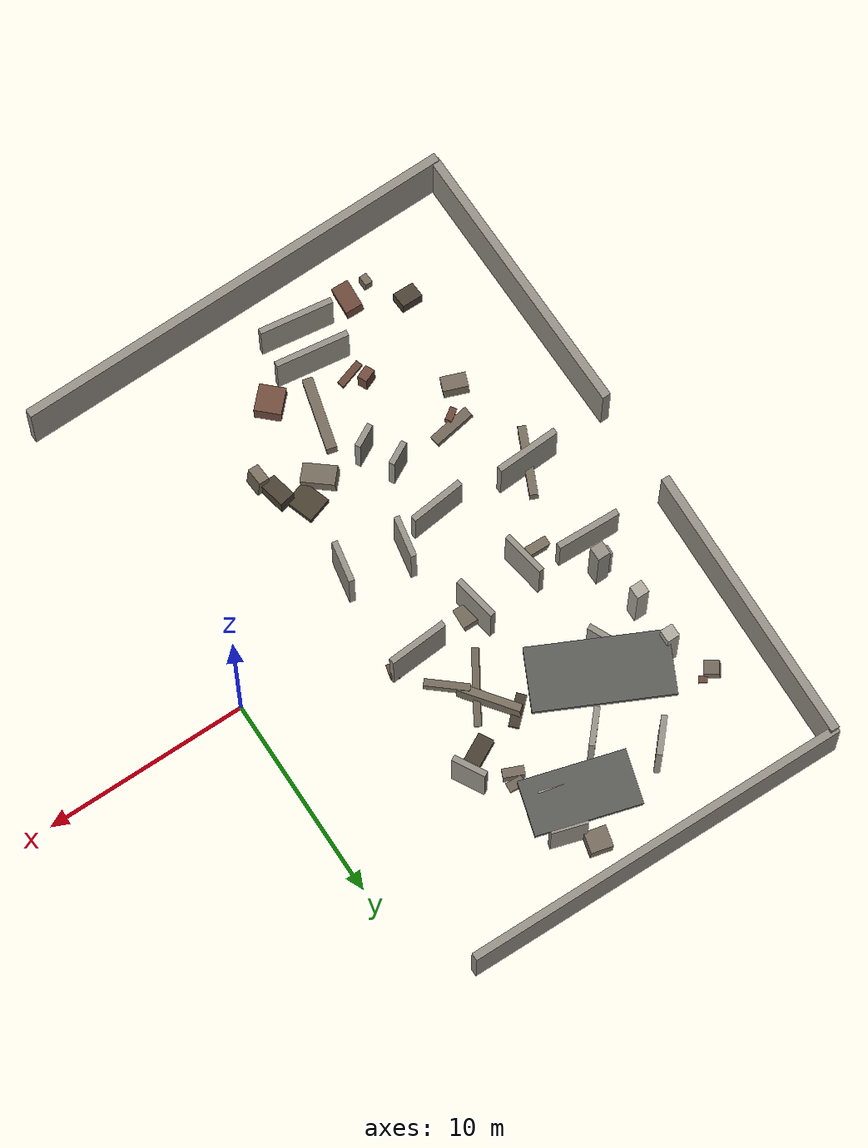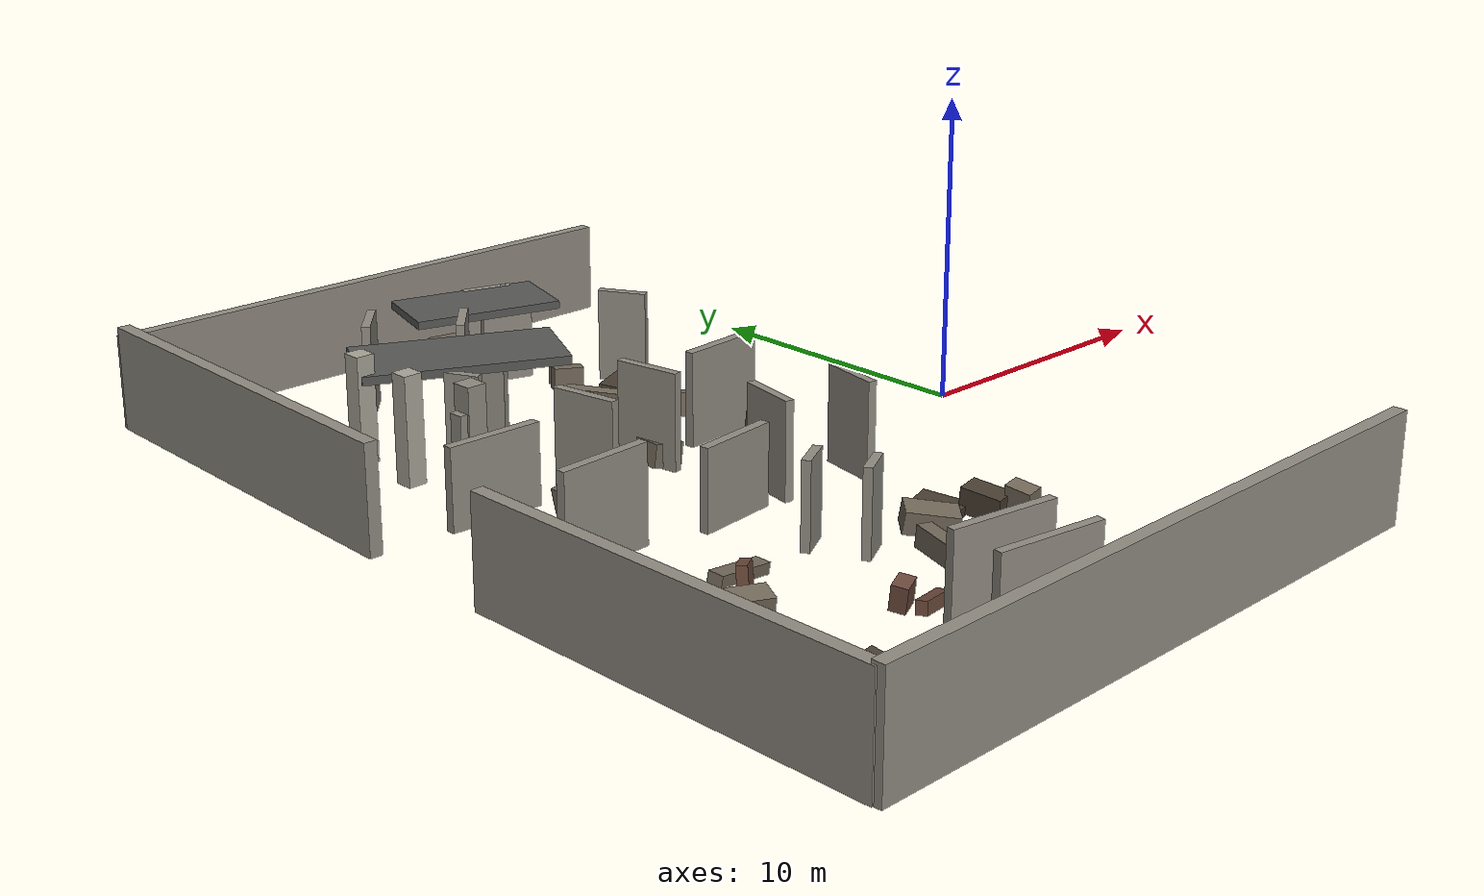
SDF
<sdf version="1.6">
 <model name="ruins_urban_01_medium">
  <static>true</static>
  <link name="001_north_boundary_west">
   <pose>-11.50000 15.85000 1.55000 0.00000 0.00000 -0.01000</pose>
   <visual name="visual">
    <geometry><box><size>19.00000 0.38000 3.10000</size></box></geometry>
    <material>
     <ambient>0.580 0.560 0.520 1</ambient>
     <diffuse>0.580 0.560 0.520 1</diffuse>
     <specular>0.03 0.03 0.03 1</specular>
    </material>
   </visual>
   <collision name="collision">
    <geometry><box><size>19.00000 0.38000 3.10000</size></box></geometry>
    <surface>
     <contact><collide_bitmask>0x01</collide_bitmask></contact>
     <friction><ode><mu>1.0</mu><mu2>1.0</mu2></ode></friction>
    </surface>
   </collision>
  </link>
  <link name="003_south_boundary_west">
   <pose>-10.00000 -15.90000 1.75000 0.00000 0.00000 0.01200</pose>
   <visual name="visual">
    <geometry><box><size>22.00000 0.42000 3.50000</size></box></geometry>
    <material>
     <ambient>0.580 0.560 0.520 1</ambient>
     <diffuse>0.580 0.560 0.520 1</diffuse>
     <specular>0.03 0.03 0.03 1</specular>
    </material>
   </visual>
   <collision name="collision">
    <geometry><box><size>22.00000 0.42000 3.50000</size></box></geometry>
    <surface>
     <contact><collide_bitmask>0x01</collide_bitmask></contact>
     <friction><ode><mu>1.0</mu><mu2>1.0</mu2></ode></friction>
    </surface>
   </collision>
  </link>
  <link name="005_west_boundary_north">
   <pose>-20.95000 9.15000 1.70000 0.00000 0.00000 -0.02000</pose>
   <visual name="visual">
    <geometry><box><size>0.42000 13.70000 3.40000</size></box></geometry>
    <material>
     <ambient>0.580 0.560 0.520 1</ambient>
     <diffuse>0.580 0.560 0.520 1</diffuse>
     <specular>0.03 0.03 0.03 1</specular>
    </material>
   </visual>
   <collision name="collision">
    <geometry><box><size>0.42000 13.70000 3.40000</size></box></geometry>
    <surface>
     <contact><collide_bitmask>0x01</collide_bitmask></contact>
     <friction><ode><mu>1.0</mu><mu2>1.0</mu2></ode></friction>
    </surface>
   </collision>
  </link>
  <link name="006_west_boundary_south">
   <pose>-20.95000 -9.15000 1.70000 0.00000 0.00000 0.01500</pose>
   <visual name="visual">
    <geometry><box><size>0.42000 13.70000 3.40000</size></box></geometry>
    <material>
     <ambient>0.580 0.560 0.520 1</ambient>
     <diffuse>0.580 0.560 0.520 1</diffuse>
     <specular>0.03 0.03 0.03 1</specular>
    </material>
   </visual>
   <collision name="collision">
    <geometry><box><size>0.42000 13.70000 3.40000</size></box></geometry>
    <surface>
     <contact><collide_bitmask>0x01</collide_bitmask></contact>
     <friction><ode><mu>1.0</mu><mu2>1.0</mu2></ode></friction>
    </surface>
   </collision>
  </link>
  <link name="008_ground_corridor_g2_n1_left">
   <pose>-13.96680 1.73807 1.57500 0.00000 0.00000 1.74751</pose>
   <visual name="visual">
    <geometry><box><size>2.18859 0.28000 3.15000</size></box></geometry>
    <material>
     <ambient>0.580 0.560 0.520 1</ambient>
     <diffuse>0.580 0.560 0.520 1</diffuse>
     <specular>0.03 0.03 0.03 1</specular>
    </material>
   </visual>
   <collision name="collision">
    <geometry><box><size>2.18859 0.28000 3.15000</size></box></geometry>
    <surface>
     <contact><collide_bitmask>0x01</collide_bitmask></contact>
     <friction><ode><mu>1.0</mu><mu2>1.0</mu2></ode></friction>
    </surface>
   </collision>
  </link>
  <link name="009_ground_corridor_g2_n1_right">
   <pose>-11.03320 2.26193 1.57500 0.00000 0.00000 1.74751</pose>
   <visual name="visual">
    <geometry><box><size>2.18859 0.28000 3.15000</size></box></geometry>
    <material>
     <ambient>0.580 0.560 0.520 1</ambient>
     <diffuse>0.580 0.560 0.520 1</diffuse>
     <specular>0.03 0.03 0.03 1</specular>
    </material>
   </visual>
   <collision name="collision">
    <geometry><box><size>2.18859 0.28000 3.15000</size></box></geometry>
    <surface>
     <contact><collide_bitmask>0x01</collide_bitmask></contact>
     <friction><ode><mu>1.0</mu><mu2>1.0</mu2></ode></friction>
    </surface>
   </collision>
  </link>
  <link name="010_ground_corridor_n1_n2_left">
   <pose>-14.78097 6.52811 1.37500 0.00000 0.00000 2.01522</pose>
   <visual name="visual">
    <geometry><box><size>1.15188 0.28000 2.75000</size></box></geometry>
    <material>
     <ambient>0.580 0.560 0.520 1</ambient>
     <diffuse>0.580 0.560 0.520 1</diffuse>
     <specular>0.03 0.03 0.03 1</specular>
    </material>
   </visual>
   <collision name="collision">
    <geometry><box><size>1.15188 0.28000 2.75000</size></box></geometry>
    <surface>
     <contact><collide_bitmask>0x01</collide_bitmask></contact>
     <friction><ode><mu>1.0</mu><mu2>1.0</mu2></ode></friction>
    </surface>
   </collision>
  </link>
  <link name="011_ground_corridor_n1_n2_right">
   <pose>-13.21903 7.27189 1.37500 0.00000 0.00000 2.01522</pose>
   <visual name="visual">
    <geometry><box><size>1.15188 0.28000 2.75000</size></box></geometry>
    <material>
     <ambient>0.580 0.560 0.520 1</ambient>
     <diffuse>0.580 0.560 0.520 1</diffuse>
     <specular>0.03 0.03 0.03 1</specular>
    </material>
   </visual>
   <collision name="collision">
    <geometry><box><size>1.15188 0.28000 2.75000</size></box></geometry>
    <surface>
     <contact><collide_bitmask>0x01</collide_bitmask></contact>
     <friction><ode><mu>1.0</mu><mu2>1.0</mu2></ode></friction>
    </surface>
   </collision>
  </link>
  <link name="012_ground_corridor_n2_n3_left">
   <pose>-14.37134 11.98117 1.57500 0.00000 0.00000 0.85197</pose>
   <visual name="visual">
    <geometry><box><size>1.81507 0.28000 3.15000</size></box></geometry>
    <material>
     <ambient>0.580 0.560 0.520 1</ambient>
     <diffuse>0.580 0.560 0.520 1</diffuse>
     <specular>0.03 0.03 0.03 1</specular>
    </material>
   </visual>
   <collision name="collision">
    <geometry><box><size>1.81507 0.28000 3.15000</size></box></geometry>
    <surface>
     <contact><collide_bitmask>0x01</collide_bitmask></contact>
     <friction><ode><mu>1.0</mu><mu2>1.0</mu2></ode></friction>
    </surface>
   </collision>
  </link>
  <link name="013_ground_corridor_n2_n3_right">
   <pose>-12.12866 10.01883 1.57500 0.00000 0.00000 0.85197</pose>
   <visual name="visual">
    <geometry><box><size>1.81507 0.28000 3.15000</size></box></geometry>
    <material>
     <ambient>0.580 0.560 0.520 1</ambient>
     <diffuse>0.580 0.560 0.520 1</diffuse>
     <specular>0.03 0.03 0.03 1</specular>
    </material>
   </visual>
   <collision name="collision">
    <geometry><box><size>1.81507 0.28000 3.15000</size></box></geometry>
    <surface>
     <contact><collide_bitmask>0x01</collide_bitmask></contact>
     <friction><ode><mu>1.0</mu><mu2>1.0</mu2></ode></friction>
    </surface>
   </collision>
  </link>
  <link name="014_ground_corridor_n3_n4_left">
   <pose>-8.75144 13.07852 1.37500 0.00000 0.00000 -0.29146</pose>
   <visual name="visual">
    <geometry><box><size>1.72015 0.28000 2.75000</size></box></geometry>
    <material>
     <ambient>0.580 0.560 0.520 1</ambient>
     <diffuse>0.580 0.560 0.520 1</diffuse>
     <specular>0.03 0.03 0.03 1</specular>
    </material>
   </visual>
   <collision name="collision">
    <geometry><box><size>1.72015 0.28000 2.75000</size></box></geometry>
    <surface>
     <contact><collide_bitmask>0x01</collide_bitmask></contact>
     <friction><ode><mu>1.0</mu><mu2>1.0</mu2></ode></friction>
    </surface>
   </collision>
  </link>
  <link name="015_ground_corridor_n3_n4_right">
   <pose>-9.24856 11.42148 1.37500 0.00000 0.00000 -0.29146</pose>
   <visual name="visual">
    <geometry><box><size>1.72015 0.28000 2.75000</size></box></geometry>
    <material>
     <ambient>0.580 0.560 0.520 1</ambient>
     <diffuse>0.580 0.560 0.520 1</diffuse>
     <specular>0.03 0.03 0.03 1</specular>
    </material>
   </visual>
   <collision name="collision">
    <geometry><box><size>1.72015 0.28000 2.75000</size></box></geometry>
    <surface>
     <contact><collide_bitmask>0x01</collide_bitmask></contact>
     <friction><ode><mu>1.0</mu><mu2>1.0</mu2></ode></friction>
    </surface>
   </collision>
  </link>
  <link name="017_ground_corridor_n4_n5_right">
   <pose>-6.55249 8.52639 1.57500 0.00000 0.00000 -1.06370</pose>
   <visual name="visual">
    <geometry><box><size>1.64782 0.28000 3.15000</size></box></geometry>
    <material>
     <ambient>0.580 0.560 0.520 1</ambient>
     <diffuse>0.580 0.560 0.520 1</diffuse>
     <specular>0.03 0.03 0.03 1</specular>
    </material>
   </visual>
   <collision name="collision">
    <geometry><box><size>1.64782 0.28000 3.15000</size></box></geometry>
    <surface>
     <contact><collide_bitmask>0x01</collide_bitmask></contact>
     <friction><ode><mu>1.0</mu><mu2>1.0</mu2></ode></friction>
    </surface>
   </collision>
  </link>
  <link name="018_ground_corridor_g3_s1_left">
   <pose>-7.03491 -2.37131 1.57500 0.00000 0.00000 -1.75391</pose>
   <visual name="visual">
    <geometry><box><size>1.99181 0.28000 3.15000</size></box></geometry>
    <material>
     <ambient>0.580 0.560 0.520 1</ambient>
     <diffuse>0.580 0.560 0.520 1</diffuse>
     <specular>0.03 0.03 0.03 1</specular>
    </material>
   </visual>
   <collision name="collision">
    <geometry><box><size>1.99181 0.28000 3.15000</size></box></geometry>
    <surface>
     <contact><collide_bitmask>0x01</collide_bitmask></contact>
     <friction><ode><mu>1.0</mu><mu2>1.0</mu2></ode></friction>
    </surface>
   </collision>
  </link>
  <link name="019_ground_corridor_g3_s1_right">
   <pose>-9.96509 -1.82869 1.57500 0.00000 0.00000 -1.75391</pose>
   <visual name="visual">
    <geometry><box><size>1.99181 0.28000 3.15000</size></box></geometry>
    <material>
     <ambient>0.580 0.560 0.520 1</ambient>
     <diffuse>0.580 0.560 0.520 1</diffuse>
     <specular>0.03 0.03 0.03 1</specular>
    </material>
   </visual>
   <collision name="collision">
    <geometry><box><size>1.99181 0.28000 3.15000</size></box></geometry>
    <surface>
     <contact><collide_bitmask>0x01</collide_bitmask></contact>
     <friction><ode><mu>1.0</mu><mu2>1.0</mu2></ode></friction>
    </surface>
   </collision>
  </link>
  <link name="020_ground_corridor_s1_s2_left">
   <pose>-11.08900 -6.91112 1.37500 0.00000 0.00000 -2.64646</pose>
   <visual name="visual">
    <geometry><box><size>1.18243 0.28000 2.75000</size></box></geometry>
    <material>
     <ambient>0.580 0.560 0.520 1</ambient>
     <diffuse>0.580 0.560 0.520 1</diffuse>
     <specular>0.03 0.03 0.03 1</specular>
    </material>
   </visual>
   <collision name="collision">
    <geometry><box><size>1.18243 0.28000 2.75000</size></box></geometry>
    <surface>
     <contact><collide_bitmask>0x01</collide_bitmask></contact>
     <friction><ode><mu>1.0</mu><mu2>1.0</mu2></ode></friction>
    </surface>
   </collision>
  </link>
  <link name="021_ground_corridor_s1_s2_right">
   <pose>-11.91100 -5.38888 1.37500 0.00000 0.00000 -2.64646</pose>
   <visual name="visual">
    <geometry><box><size>1.18243 0.28000 2.75000</size></box></geometry>
    <material>
     <ambient>0.580 0.560 0.520 1</ambient>
     <diffuse>0.580 0.560 0.520 1</diffuse>
     <specular>0.03 0.03 0.03 1</specular>
    </material>
   </visual>
   <collision name="collision">
    <geometry><box><size>1.18243 0.28000 2.75000</size></box></geometry>
    <surface>
     <contact><collide_bitmask>0x01</collide_bitmask></contact>
     <friction><ode><mu>1.0</mu><mu2>1.0</mu2></ode></friction>
    </surface>
   </collision>
  </link>
  <link name="022_ground_corridor_s3_s4_left">
   <pose>-11.37767 -11.64369 1.37500 0.00000 0.00000 -0.14190</pose>
   <visual name="visual">
    <geometry><box><size>3.57107 0.28000 2.75000</size></box></geometry>
    <material>
     <ambient>0.580 0.560 0.520 1</ambient>
     <diffuse>0.580 0.560 0.520 1</diffuse>
     <specular>0.03 0.03 0.03 1</specular>
    </material>
   </visual>
   <collision name="collision">
    <geometry><box><size>3.57107 0.28000 2.75000</size></box></geometry>
    <surface>
     <contact><collide_bitmask>0x01</collide_bitmask></contact>
     <friction><ode><mu>1.0</mu><mu2>1.0</mu2></ode></friction>
    </surface>
   </collision>
  </link>
  <link name="023_ground_corridor_s3_s4_right">
   <pose>-11.62233 -13.35631 1.37500 0.00000 0.00000 -0.14190</pose>
   <visual name="visual">
    <geometry><box><size>3.57107 0.28000 2.75000</size></box></geometry>
    <material>
     <ambient>0.580 0.560 0.520 1</ambient>
     <diffuse>0.580 0.560 0.520 1</diffuse>
     <specular>0.03 0.03 0.03 1</specular>
    </material>
   </visual>
   <collision name="collision">
    <geometry><box><size>3.57107 0.28000 2.75000</size></box></geometry>
    <surface>
     <contact><collide_bitmask>0x01</collide_bitmask></contact>
     <friction><ode><mu>1.0</mu><mu2>1.0</mu2></ode></friction>
    </surface>
   </collision>
  </link>
  <link name="038_spine_broken_panel_00">
   <pose>-17.05000 2.20000 1.30000 0.00000 0.00000 -0.03225</pose>
   <visual name="visual">
    <geometry><box><size>3.10161 0.30000 2.60000</size></box></geometry>
    <material>
     <ambient>0.580 0.560 0.520 1</ambient>
     <diffuse>0.580 0.560 0.520 1</diffuse>
     <specular>0.03 0.03 0.03 1</specular>
    </material>
   </visual>
   <collision name="collision">
    <geometry><box><size>3.10161 0.30000 2.60000</size></box></geometry>
    <surface>
     <contact><collide_bitmask>0x01</collide_bitmask></contact>
     <friction><ode><mu>1.0</mu><mu2>1.0</mu2></ode></friction>
    </surface>
   </collision>
  </link>
  <link name="039_spine_broken_panel_02">
   <pose>-7.75000 2.55000 1.55000 0.00000 0.00000 0.06886</pose>
   <visual name="visual">
    <geometry><box><size>2.90689 0.30000 3.10000</size></box></geometry>
    <material>
     <ambient>0.580 0.560 0.520 1</ambient>
     <diffuse>0.580 0.560 0.520 1</diffuse>
     <specular>0.03 0.03 0.03 1</specular>
    </material>
   </visual>
   <collision name="collision">
    <geometry><box><size>2.90689 0.30000 3.10000</size></box></geometry>
    <surface>
     <contact><collide_bitmask>0x01</collide_bitmask></contact>
     <friction><ode><mu>1.0</mu><mu2>1.0</mu2></ode></friction>
    </surface>
   </collision>
  </link>
  <link name="044_spine_broken_panel_08">
   <pose>-16.75000 -2.22500 1.55000 0.00000 0.00000 0.04835</pose>
   <visual name="visual">
    <geometry><box><size>3.10363 0.30000 3.10000</size></box></geometry>
    <material>
     <ambient>0.580 0.560 0.520 1</ambient>
     <diffuse>0.580 0.560 0.520 1</diffuse>
     <specular>0.03 0.03 0.03 1</specular>
    </material>
   </visual>
   <collision name="collision">
    <geometry><box><size>3.10363 0.30000 3.10000</size></box></geometry>
    <surface>
     <contact><collide_bitmask>0x01</collide_bitmask></contact>
     <friction><ode><mu>1.0</mu><mu2>1.0</mu2></ode></friction>
    </surface>
   </collision>
  </link>
  <link name="045_spine_broken_panel_09">
   <pose>-12.15000 -2.60000 1.30000 0.00000 0.00000 0.11066</pose>
   <visual name="visual">
    <geometry><box><size>2.71662 0.30000 2.60000</size></box></geometry>
    <material>
     <ambient>0.580 0.560 0.520 1</ambient>
     <diffuse>0.580 0.560 0.520 1</diffuse>
     <specular>0.03 0.03 0.03 1</specular>
    </material>
   </visual>
   <collision name="collision">
    <geometry><box><size>2.71662 0.30000 2.60000</size></box></geometry>
    <surface>
     <contact><collide_bitmask>0x01</collide_bitmask></contact>
     <friction><ode><mu>1.0</mu><mu2>1.0</mu2></ode></friction>
    </surface>
   </collision>
  </link>
  <link name="050_utility_ceiling_01">
   <pose>-13.80000 8.00000 2.72000 0.00000 0.00000 -0.45000</pose>
   <visual name="visual">
    <geometry><box><size>6.50000 3.00000 0.28000</size></box></geometry>
    <material>
     <ambient>0.350 0.350 0.340 1</ambient>
     <diffuse>0.350 0.350 0.340 1</diffuse>
     <specular>0.03 0.03 0.03 1</specular>
    </material>
   </visual>
   <collision name="collision">
    <geometry><box><size>6.50000 3.00000 0.28000</size></box></geometry>
    <surface>
     <contact><collide_bitmask>0x01</collide_bitmask></contact>
     <friction><ode><mu>1.0</mu><mu2>1.0</mu2></ode></friction>
    </surface>
   </collision>
  </link>
  <link name="051_utility_ceiling_02">
   <pose>-10.00000 12.10000 2.62000 0.00000 0.00000 -0.28000</pose>
   <visual name="visual">
    <geometry><box><size>5.00000 2.60000 0.26000</size></box></geometry>
    <material>
     <ambient>0.350 0.350 0.340 1</ambient>
     <diffuse>0.350 0.350 0.340 1</diffuse>
     <specular>0.03 0.03 0.03 1</specular>
    </material>
   </visual>
   <collision name="collision">
    <geometry><box><size>5.00000 2.60000 0.26000</size></box></geometry>
    <surface>
     <contact><collide_bitmask>0x01</collide_bitmask></contact>
     <friction><ode><mu>1.0</mu><mu2>1.0</mu2></ode></friction>
    </surface>
   </collision>
  </link>
  <link name="052_fixed_column_00">
   <pose>-17.20000 6.00000 1.75000 0.00000 0.00000 0.00000</pose>
   <visual name="visual">
    <geometry><box><size>0.62000 0.62000 3.50000</size></box></geometry>
    <material>
     <ambient>0.680 0.660 0.610 1</ambient>
     <diffuse>0.680 0.660 0.610 1</diffuse>
     <specular>0.03 0.03 0.03 1</specular>
    </material>
   </visual>
   <collision name="collision">
    <geometry><box><size>0.62000 0.62000 3.50000</size></box></geometry>
    <surface>
     <contact><collide_bitmask>0x01</collide_bitmask></contact>
     <friction><ode><mu>1.0</mu><mu2>1.0</mu2></ode></friction>
    </surface>
   </collision>
  </link>
  <link name="053_fixed_column_01">
   <pose>-17.20000 8.40000 1.75000 0.00000 0.00000 0.00000</pose>
   <visual name="visual">
    <geometry><box><size>0.62000 0.62000 3.50000</size></box></geometry>
    <material>
     <ambient>0.680 0.660 0.610 1</ambient>
     <diffuse>0.680 0.660 0.610 1</diffuse>
     <specular>0.03 0.03 0.03 1</specular>
    </material>
   </visual>
   <collision name="collision">
    <geometry><box><size>0.62000 0.62000 3.50000</size></box></geometry>
    <surface>
     <contact><collide_bitmask>0x01</collide_bitmask></contact>
     <friction><ode><mu>1.0</mu><mu2>1.0</mu2></ode></friction>
    </surface>
   </collision>
  </link>
  <link name="093_medium_random_column_02">
   <pose>-16.93869 3.57772 1.42360 0.00000 0.00000 0.00000</pose>
   <visual name="visual">
    <geometry><box><size>0.70482 0.46498 2.84720</size></box></geometry>
    <material>
     <ambient>0.580 0.560 0.520 1</ambient>
     <diffuse>0.580 0.560 0.520 1</diffuse>
     <specular>0.03 0.03 0.03 1</specular>
    </material>
   </visual>
   <collision name="collision">
    <geometry><box><size>0.70482 0.46498 2.84720</size></box></geometry>
    <surface>
     <contact><collide_bitmask>0x01</collide_bitmask></contact>
     <friction><ode><mu>1.0</mu><mu2>1.0</mu2></ode></friction>
    </surface>
   </collision>
  </link>
  <link name="100_medium_random_column_09">
   <pose>-16.72560 3.60039 1.83524 0.00000 0.00000 0.00000</pose>
   <visual name="visual">
    <geometry><box><size>0.63542 0.66842 3.67047</size></box></geometry>
    <material>
     <ambient>0.580 0.560 0.520 1</ambient>
     <diffuse>0.580 0.560 0.520 1</diffuse>
     <specular>0.03 0.03 0.03 1</specular>
    </material>
   </visual>
   <collision name="collision">
    <geometry><box><size>0.63542 0.66842 3.67047</size></box></geometry>
    <surface>
     <contact><collide_bitmask>0x01</collide_bitmask></contact>
     <friction><ode><mu>1.0</mu><mu2>1.0</mu2></ode></friction>
    </surface>
   </collision>
  </link>
  <link name="101_medium_rubble_000">
   <pose>-6.48572 2.47917 0.54035 -0.04165 -0.14884 2.86690</pose>
   <visual name="visual">
    <geometry><box><size>0.36681 0.47839 1.08071</size></box></geometry>
    <material>
     <ambient>0.430 0.290 0.230 1</ambient>
     <diffuse>0.430 0.290 0.230 1</diffuse>
     <specular>0.03 0.03 0.03 1</specular>
    </material>
   </visual>
   <collision name="collision">
    <geometry><box><size>0.36681 0.47839 1.08071</size></box></geometry>
    <surface>
     <contact><collide_bitmask>0x01</collide_bitmask></contact>
     <friction><ode><mu>1.0</mu><mu2>1.0</mu2></ode></friction>
    </surface>
   </collision>
  </link>
  <link name="102_medium_rubble_001">
   <pose>-8.77116 -7.03309 0.35260 -0.06836 -0.14068 2.41416</pose>
   <visual name="visual">
    <geometry><box><size>1.61996 0.95524 0.70519</size></box></geometry>
    <material>
     <ambient>0.460 0.420 0.360 1</ambient>
     <diffuse>0.460 0.420 0.360 1</diffuse>
     <specular>0.03 0.03 0.03 1</specular>
    </material>
   </visual>
   <collision name="collision">
    <geometry><box><size>1.61996 0.95524 0.70519</size></box></geometry>
    <surface>
     <contact><collide_bitmask>0x01</collide_bitmask></contact>
     <friction><ode><mu>1.0</mu><mu2>1.0</mu2></ode></friction>
    </surface>
   </collision>
  </link>
  <link name="104_medium_rubble_003">
   <pose>-9.77870 13.92279 0.47048 -0.01500 0.04230 1.33665</pose>
   <visual name="visual">
    <geometry><box><size>1.01523 1.05675 0.94095</size></box></geometry>
    <material>
     <ambient>0.460 0.420 0.360 1</ambient>
     <diffuse>0.460 0.420 0.360 1</diffuse>
     <specular>0.03 0.03 0.03 1</specular>
    </material>
   </visual>
   <collision name="collision">
    <geometry><box><size>1.01523 1.05675 0.94095</size></box></geometry>
    <surface>
     <contact><collide_bitmask>0x01</collide_bitmask></contact>
     <friction><ode><mu>1.0</mu><mu2>1.0</mu2></ode></friction>
    </surface>
   </collision>
  </link>
  <link name="105_medium_rubble_004">
   <pose>-15.29528 -6.21242 0.40188 -0.09750 0.11711 0.59042</pose>
   <visual name="visual">
    <geometry><box><size>0.63008 0.33308 0.80376</size></box></geometry>
    <material>
     <ambient>0.430 0.290 0.230 1</ambient>
     <diffuse>0.430 0.290 0.230 1</diffuse>
     <specular>0.03 0.03 0.03 1</specular>
    </material>
   </visual>
   <collision name="collision">
    <geometry><box><size>0.63008 0.33308 0.80376</size></box></geometry>
    <surface>
     <contact><collide_bitmask>0x01</collide_bitmask></contact>
     <friction><ode><mu>1.0</mu><mu2>1.0</mu2></ode></friction>
    </surface>
   </collision>
  </link>
  <link name="109_medium_rubble_008">
   <pose>-17.88873 10.27993 0.17756 0.08843 -0.05150 2.56237</pose>
   <visual name="visual">
    <geometry><box><size>0.43265 0.30144 0.35512</size></box></geometry>
    <material>
     <ambient>0.430 0.290 0.230 1</ambient>
     <diffuse>0.430 0.290 0.230 1</diffuse>
     <specular>0.03 0.03 0.03 1</specular>
    </material>
   </visual>
   <collision name="collision">
    <geometry><box><size>0.43265 0.30144 0.35512</size></box></geometry>
    <surface>
     <contact><collide_bitmask>0x01</collide_bitmask></contact>
     <friction><ode><mu>1.0</mu><mu2>1.0</mu2></ode></friction>
    </surface>
   </collision>
  </link>
  <link name="110_medium_rubble_009">
   <pose>-8.23202 9.73610 0.31206 0.14910 0.13556 1.50559</pose>
   <visual name="visual">
    <geometry><box><size>0.45033 0.79728 0.62412</size></box></geometry>
    <material>
     <ambient>0.460 0.420 0.360 1</ambient>
     <diffuse>0.460 0.420 0.360 1</diffuse>
     <specular>0.03 0.03 0.03 1</specular>
    </material>
   </visual>
   <collision name="collision">
    <geometry><box><size>0.45033 0.79728 0.62412</size></box></geometry>
    <surface>
     <contact><collide_bitmask>0x01</collide_bitmask></contact>
     <friction><ode><mu>1.0</mu><mu2>1.0</mu2></ode></friction>
    </surface>
   </collision>
  </link>
  <link name="115_medium_rubble_014">
   <pose>-6.75703 -7.39031 0.40239 0.10069 -0.04487 0.18188</pose>
   <visual name="visual">
    <geometry><box><size>0.79155 1.30393 0.80479</size></box></geometry>
    <material>
     <ambient>0.290 0.250 0.200 1</ambient>
     <diffuse>0.290 0.250 0.200 1</diffuse>
     <specular>0.03 0.03 0.03 1</specular>
    </material>
   </visual>
   <collision name="collision">
    <geometry><box><size>0.79155 1.30393 0.80479</size></box></geometry>
    <surface>
     <contact><collide_bitmask>0x01</collide_bitmask></contact>
     <friction><ode><mu>1.0</mu><mu2>1.0</mu2></ode></friction>
    </surface>
   </collision>
  </link>
  <link name="117_medium_rubble_016">
   <pose>-14.43709 -13.42804 0.46290 0.00624 -0.11015 3.08492</pose>
   <visual name="visual">
    <geometry><box><size>0.85052 1.33859 0.92580</size></box></geometry>
    <material>
     <ambient>0.430 0.290 0.230 1</ambient>
     <diffuse>0.430 0.290 0.230 1</diffuse>
     <specular>0.03 0.03 0.03 1</specular>
    </material>
   </visual>
   <collision name="collision">
    <geometry><box><size>0.85052 1.33859 0.92580</size></box></geometry>
    <surface>
     <contact><collide_bitmask>0x01</collide_bitmask></contact>
     <friction><ode><mu>1.0</mu><mu2>1.0</mu2></ode></friction>
    </surface>
   </collision>
  </link>
  <link name="118_medium_rubble_017">
   <pose>-10.79476 2.09504 0.37981 0.15900 0.01882 1.52706</pose>
   <visual name="visual">
    <geometry><box><size>0.94957 1.06453 0.75962</size></box></geometry>
    <material>
     <ambient>0.460 0.420 0.360 1</ambient>
     <diffuse>0.460 0.420 0.360 1</diffuse>
     <specular>0.03 0.03 0.03 1</specular>
    </material>
   </visual>
   <collision name="collision">
    <geometry><box><size>0.94957 1.06453 0.75962</size></box></geometry>
    <surface>
     <contact><collide_bitmask>0x01</collide_bitmask></contact>
     <friction><ode><mu>1.0</mu><mu2>1.0</mu2></ode></friction>
    </surface>
   </collision>
  </link>
  <link name="122_medium_rubble_021">
   <pose>-10.17587 6.95912 0.21773 -0.04749 0.15116 0.74437</pose>
   <visual name="visual">
    <geometry><box><size>1.52736 0.50643 0.43546</size></box></geometry>
    <material>
     <ambient>0.290 0.250 0.200 1</ambient>
     <diffuse>0.290 0.250 0.200 1</diffuse>
     <specular>0.03 0.03 0.03 1</specular>
    </material>
   </visual>
   <collision name="collision">
    <geometry><box><size>1.52736 0.50643 0.43546</size></box></geometry>
    <surface>
     <contact><collide_bitmask>0x01</collide_bitmask></contact>
     <friction><ode><mu>1.0</mu><mu2>1.0</mu2></ode></friction>
    </surface>
   </collision>
  </link>
  <link name="124_medium_rubble_023">
   <pose>-6.32077 -8.38105 0.55220 0.08922 -0.17511 0.04031</pose>
   <visual name="visual">
    <geometry><box><size>0.53231 0.87293 1.10441</size></box></geometry>
    <material>
     <ambient>0.460 0.420 0.360 1</ambient>
     <diffuse>0.460 0.420 0.360 1</diffuse>
     <specular>0.03 0.03 0.03 1</specular>
    </material>
   </visual>
   <collision name="collision">
    <geometry><box><size>0.53231 0.87293 1.10441</size></box></geometry>
    <surface>
     <contact><collide_bitmask>0x01</collide_bitmask></contact>
     <friction><ode><mu>1.0</mu><mu2>1.0</mu2></ode></friction>
    </surface>
   </collision>
  </link>
  <link name="130_medium_rubble_029">
   <pose>-18.44382 10.15596 0.43780 0.15297 0.07016 0.96647</pose>
   <visual name="visual">
    <geometry><box><size>0.66206 0.70038 0.87561</size></box></geometry>
    <material>
     <ambient>0.460 0.420 0.360 1</ambient>
     <diffuse>0.460 0.420 0.360 1</diffuse>
     <specular>0.03 0.03 0.03 1</specular>
    </material>
   </visual>
   <collision name="collision">
    <geometry><box><size>0.66206 0.70038 0.87561</size></box></geometry>
    <surface>
     <contact><collide_bitmask>0x01</collide_bitmask></contact>
     <friction><ode><mu>1.0</mu><mu2>1.0</mu2></ode></friction>
    </surface>
   </collision>
  </link>
  <link name="132_medium_rubble_031">
   <pose>-14.99580 1.15758 0.42017 -0.07949 -0.15426 0.01307</pose>
   <visual name="visual">
    <geometry><box><size>1.12996 0.45655 0.84034</size></box></geometry>
    <material>
     <ambient>0.460 0.420 0.360 1</ambient>
     <diffuse>0.460 0.420 0.360 1</diffuse>
     <specular>0.03 0.03 0.03 1</specular>
    </material>
   </visual>
   <collision name="collision">
    <geometry><box><size>1.12996 0.45655 0.84034</size></box></geometry>
    <surface>
     <contact><collide_bitmask>0x01</collide_bitmask></contact>
     <friction><ode><mu>1.0</mu><mu2>1.0</mu2></ode></friction>
    </surface>
   </collision>
  </link>
  <link name="133_medium_rubble_032">
   <pose>-8.81939 -11.22525 0.36619 0.02188 -0.11798 0.81221</pose>
   <visual name="visual">
    <geometry><box><size>1.36091 1.26744 0.73238</size></box></geometry>
    <material>
     <ambient>0.430 0.290 0.230 1</ambient>
     <diffuse>0.430 0.290 0.230 1</diffuse>
     <specular>0.03 0.03 0.03 1</specular>
    </material>
   </visual>
   <collision name="collision">
    <geometry><box><size>1.36091 1.26744 0.73238</size></box></geometry>
    <surface>
     <contact><collide_bitmask>0x01</collide_bitmask></contact>
     <friction><ode><mu>1.0</mu><mu2>1.0</mu2></ode></friction>
    </surface>
   </collision>
  </link>
  <link name="135_medium_rubble_034">
   <pose>-8.40034 9.28842 0.37290 0.04426 0.00890 1.16009</pose>
   <visual name="visual">
    <geometry><box><size>0.42986 1.01386 0.74580</size></box></geometry>
    <material>
     <ambient>0.460 0.420 0.360 1</ambient>
     <diffuse>0.460 0.420 0.360 1</diffuse>
     <specular>0.03 0.03 0.03 1</specular>
    </material>
   </visual>
   <collision name="collision">
    <geometry><box><size>0.42986 1.01386 0.74580</size></box></geometry>
    <surface>
     <contact><collide_bitmask>0x01</collide_bitmask></contact>
     <friction><ode><mu>1.0</mu><mu2>1.0</mu2></ode></friction>
    </surface>
   </collision>
  </link>
  <link name="136_medium_rubble_035">
   <pose>-16.79746 -12.04286 0.29935 0.12328 -0.09924 0.02156</pose>
   <visual name="visual">
    <geometry><box><size>1.05449 0.79006 0.59870</size></box></geometry>
    <material>
     <ambient>0.290 0.250 0.200 1</ambient>
     <diffuse>0.290 0.250 0.200 1</diffuse>
     <specular>0.03 0.03 0.03 1</specular>
    </material>
   </visual>
   <collision name="collision">
    <geometry><box><size>1.05449 0.79006 0.59870</size></box></geometry>
    <surface>
     <contact><collide_bitmask>0x01</collide_bitmask></contact>
     <friction><ode><mu>1.0</mu><mu2>1.0</mu2></ode></friction>
    </surface>
   </collision>
  </link>
  <link name="137_medium_rubble_036">
   <pose>-13.10219 -9.82628 0.39870 -0.11306 -0.11869 1.98965</pose>
   <visual name="visual">
    <geometry><box><size>0.48661 0.68686 0.79740</size></box></geometry>
    <material>
     <ambient>0.430 0.290 0.230 1</ambient>
     <diffuse>0.430 0.290 0.230 1</diffuse>
     <specular>0.03 0.03 0.03 1</specular>
    </material>
   </visual>
   <collision name="collision">
    <geometry><box><size>0.48661 0.68686 0.79740</size></box></geometry>
    <surface>
     <contact><collide_bitmask>0x01</collide_bitmask></contact>
     <friction><ode><mu>1.0</mu><mu2>1.0</mu2></ode></friction>
    </surface>
   </collision>
  </link>
  <link name="143_medium_rubble_042">
   <pose>-7.67990 -6.38503 0.16587 -0.01576 -0.07577 1.87779</pose>
   <visual name="visual">
    <geometry><box><size>1.47299 1.26985 0.33174</size></box></geometry>
    <material>
     <ambient>0.290 0.250 0.200 1</ambient>
     <diffuse>0.290 0.250 0.200 1</diffuse>
     <specular>0.03 0.03 0.03 1</specular>
    </material>
   </visual>
   <collision name="collision">
    <geometry><box><size>1.47299 1.26985 0.33174</size></box></geometry>
    <surface>
     <contact><collide_bitmask>0x01</collide_bitmask></contact>
     <friction><ode><mu>1.0</mu><mu2>1.0</mu2></ode></friction>
    </surface>
   </collision>
  </link>
  <link name="148_medium_rubble_047">
   <pose>-16.26555 -7.36130 0.32339 -0.15875 -0.04509 2.77346</pose>
   <visual name="visual">
    <geometry><box><size>1.18964 0.75532 0.64678</size></box></geometry>
    <material>
     <ambient>0.460 0.420 0.360 1</ambient>
     <diffuse>0.460 0.420 0.360 1</diffuse>
     <specular>0.03 0.03 0.03 1</specular>
    </material>
   </visual>
   <collision name="collision">
    <geometry><box><size>1.18964 0.75532 0.64678</size></box></geometry>
    <surface>
     <contact><collide_bitmask>0x01</collide_bitmask></contact>
     <friction><ode><mu>1.0</mu><mu2>1.0</mu2></ode></friction>
    </surface>
   </collision>
  </link>
  <link name="149_medium_rubble_048">
   <pose>-12.60352 -10.42339 0.20234 -0.09733 0.14024 0.28098</pose>
   <visual name="visual">
    <geometry><box><size>1.32514 0.34390 0.40468</size></box></geometry>
    <material>
     <ambient>0.430 0.290 0.230 1</ambient>
     <diffuse>0.430 0.290 0.230 1</diffuse>
     <specular>0.03 0.03 0.03 1</specular>
    </material>
   </visual>
   <collision name="collision">
    <geometry><box><size>1.32514 0.34390 0.40468</size></box></geometry>
    <surface>
     <contact><collide_bitmask>0x01</collide_bitmask></contact>
     <friction><ode><mu>1.0</mu><mu2>1.0</mu2></ode></friction>
    </surface>
   </collision>
  </link>
  <link name="150_medium_rubble_049">
   <pose>-7.60623 7.62908 0.25991 0.08851 0.04087 0.47875</pose>
   <visual name="visual">
    <geometry><box><size>1.61940 0.75157 0.51983</size></box></geometry>
    <material>
     <ambient>0.290 0.250 0.200 1</ambient>
     <diffuse>0.290 0.250 0.200 1</diffuse>
     <specular>0.03 0.03 0.03 1</specular>
    </material>
   </visual>
   <collision name="collision">
    <geometry><box><size>1.61940 0.75157 0.51983</size></box></geometry>
    <surface>
     <contact><collide_bitmask>0x01</collide_bitmask></contact>
     <friction><ode><mu>1.0</mu><mu2>1.0</mu2></ode></friction>
    </surface>
   </collision>
  </link>
  <link name="151_medium_rubble_050">
   <pose>-15.62269 -13.76407 0.26961 -0.10144 -0.04863 1.60768</pose>
   <visual name="visual">
    <geometry><box><size>0.50840 0.37872 0.53922</size></box></geometry>
    <material>
     <ambient>0.460 0.420 0.360 1</ambient>
     <diffuse>0.460 0.420 0.360 1</diffuse>
     <specular>0.03 0.03 0.03 1</specular>
    </material>
   </visual>
   <collision name="collision">
    <geometry><box><size>0.50840 0.37872 0.53922</size></box></geometry>
    <surface>
     <contact><collide_bitmask>0x01</collide_bitmask></contact>
     <friction><ode><mu>1.0</mu><mu2>1.0</mu2></ode></friction>
    </surface>
   </collision>
  </link>
  <link name="154_medium_collapsed_wall_01">
   <pose>-9.22502 5.08001 0.40013 0.12432 0.17971 1.02344</pose>
   <visual name="visual">
    <geometry><box><size>3.52207 0.33465 0.37554</size></box></geometry>
    <material>
     <ambient>0.460 0.420 0.360 1</ambient>
     <diffuse>0.460 0.420 0.360 1</diffuse>
     <specular>0.03 0.03 0.03 1</specular>
    </material>
   </visual>
   <collision name="collision">
    <geometry><box><size>3.52207 0.33465 0.37554</size></box></geometry>
    <surface>
     <contact><collide_bitmask>0x01</collide_bitmask></contact>
     <friction><ode><mu>1.0</mu><mu2>1.0</mu2></ode></friction>
    </surface>
   </collision>
  </link>
  <link name="158_medium_collapsed_wall_05">
   <pose>-15.05852 -5.75448 0.28818 0.07674 0.15343 0.12799</pose>
   <visual name="visual">
    <geometry><box><size>2.07234 0.50145 0.35694</size></box></geometry>
    <material>
     <ambient>0.460 0.420 0.360 1</ambient>
     <diffuse>0.460 0.420 0.360 1</diffuse>
     <specular>0.03 0.03 0.03 1</specular>
    </material>
   </visual>
   <collision name="collision">
    <geometry><box><size>2.07234 0.50145 0.35694</size></box></geometry>
    <surface>
     <contact><collide_bitmask>0x01</collide_bitmask></contact>
     <friction><ode><mu>1.0</mu><mu2>1.0</mu2></ode></friction>
    </surface>
   </collision>
  </link>
  <link name="161_medium_collapsed_wall_08">
   <pose>-8.10943 4.38116 0.64043 0.07710 -0.00561 2.44093</pose>
   <visual name="visual">
    <geometry><box><size>2.09540 0.33235 0.80734</size></box></geometry>
    <material>
     <ambient>0.460 0.420 0.360 1</ambient>
     <diffuse>0.460 0.420 0.360 1</diffuse>
     <specular>0.03 0.03 0.03 1</specular>
    </material>
   </visual>
   <collision name="collision">
    <geometry><box><size>2.09540 0.33235 0.80734</size></box></geometry>
    <surface>
     <contact><collide_bitmask>0x01</collide_bitmask></contact>
     <friction><ode><mu>1.0</mu><mu2>1.0</mu2></ode></friction>
    </surface>
   </collision>
  </link>
  <link name="164_medium_collapsed_wall_11">
   <pose>-10.35126 -9.46380 0.37524 0.05102 -0.04327 1.31099</pose>
   <visual name="visual">
    <geometry><box><size>3.56892 0.50386 0.68000</size></box></geometry>
    <material>
     <ambient>0.460 0.420 0.360 1</ambient>
     <diffuse>0.460 0.420 0.360 1</diffuse>
     <specular>0.03 0.03 0.03 1</specular>
    </material>
   </visual>
   <collision name="collision">
    <geometry><box><size>3.56892 0.50386 0.68000</size></box></geometry>
    <surface>
     <contact><collide_bitmask>0x01</collide_bitmask></contact>
     <friction><ode><mu>1.0</mu><mu2>1.0</mu2></ode></friction>
    </surface>
   </collision>
  </link>
  <link name="165_medium_collapsed_wall_12">
   <pose>-9.34024 5.94683 0.58685 -0.08157 -0.05757 2.20596</pose>
   <visual name="visual">
    <geometry><box><size>3.01681 0.37883 0.79476</size></box></geometry>
    <material>
     <ambient>0.460 0.420 0.360 1</ambient>
     <diffuse>0.460 0.420 0.360 1</diffuse>
     <specular>0.03 0.03 0.03 1</specular>
    </material>
   </visual>
   <collision name="collision">
    <geometry><box><size>3.01681 0.37883 0.79476</size></box></geometry>
    <surface>
     <contact><collide_bitmask>0x01</collide_bitmask></contact>
     <friction><ode><mu>1.0</mu><mu2>1.0</mu2></ode></friction>
    </surface>
   </collision>
  </link>
  <link name="166_medium_collapsed_wall_13">
   <pose>-16.98956 -2.45514 0.31794 0.02608 -0.06588 1.14532</pose>
   <visual name="visual">
    <geometry><box><size>3.39074 0.39579 0.56164</size></box></geometry>
    <material>
     <ambient>0.460 0.420 0.360 1</ambient>
     <diffuse>0.460 0.420 0.360 1</diffuse>
     <specular>0.03 0.03 0.03 1</specular>
    </material>
   </visual>
   <collision name="collision">
    <geometry><box><size>3.39074 0.39579 0.56164</size></box></geometry>
    <surface>
     <contact><collide_bitmask>0x01</collide_bitmask></contact>
     <friction><ode><mu>1.0</mu><mu2>1.0</mu2></ode></friction>
    </surface>
   </collision>
  </link>
 </model>
</sdf>
